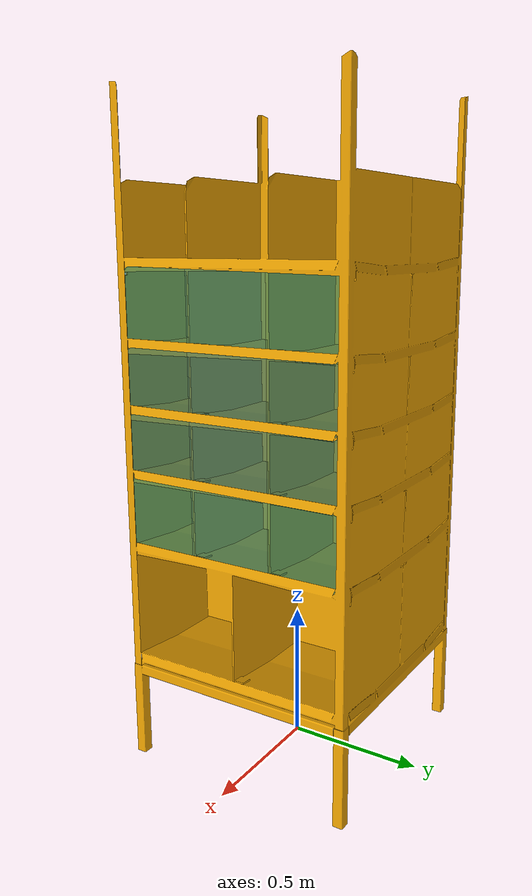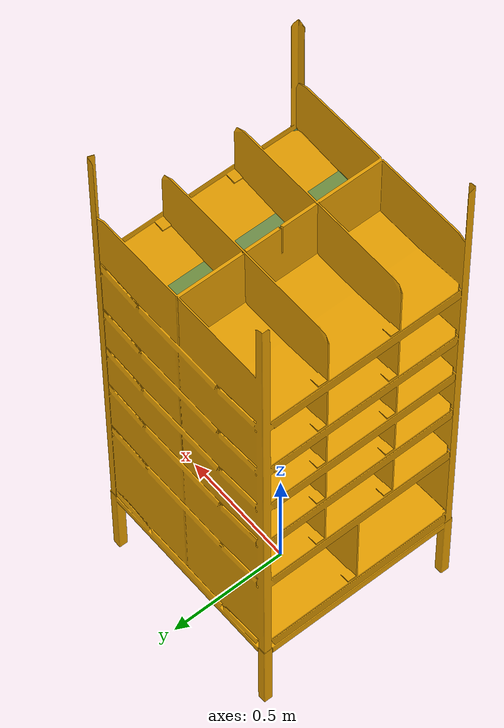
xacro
<?xml version="1.0"?>
<robot name="kiva_pod" xmlns:xacro="http://www.ros.org/wiki/xacro">

    <!-- Include decriptions for LWA4D_TORSO -->
    <xacro:include filename="$(find apc_description)/urdf/kiva_pod/kiva_pod.xacro" />

    <!-- Math constants -->
    <xacro:property name="M_PI" value="3.141592653" />

    <!-- KIVA pod properties. -->
    <xacro:property name="bin_base_height"  value="0.805" />
    <xacro:property name="bin_depth"        value="0.434" />
    <xacro:property name="bin_width_side"   value="0.274" />
    <xacro:property name="bin_width_middle" value="0.305" />
    <xacro:property name="bin_height_small" value="0.227" />
    <xacro:property name="bin_height_large" value="0.266" />

    <!-- Assemble KIVA pod. -->
    <xacro:kiva_pod name="kiva_pod" />

</robot>

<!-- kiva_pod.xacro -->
<robot name="kiva_pod" xmlns:xacro="http://www.ros.org/wiki/xacro">

    <xacro:macro name="kiva_bin" params="parent name width height *origin">

        <link name="${name}">
            <inertial>
                <origin rpy="0 0 0" xyz="0.0 0.0 0.0"/>
                <mass value="5.0"/>
                <inertia ixx="1" ixy="0.0" ixz="0.0" iyy="1" iyz="0.0" izz="1"/>
            </inertial>
            <visual>
                <origin rpy="0 0 0" xyz="${-bin_depth/2.0} 0 0"/>
                <geometry>
                    <box size="${bin_depth} ${width} ${height}"/>
                </geometry>
                <material name="${name}_material">
                    <color rgba="0 ${2.0 * height} ${2.0 * width} 0.5"/>
                </material>
            </visual>
            <collision>
                <origin rpy="0 0 0" xyz="${-bin_depth/2.0} 0 0"/>
                <geometry>
                    <box size="${bin_depth} ${width} ${height}"/>
                </geometry>
            </collision>
        </link>

        <joint name="${name}_joint" type="fixed">
            <xacro:insert_block name="origin"/>
            <parent link="${parent}"/>
            <child  link="${name}"/>
        </joint>

    </xacro:macro>

	<xacro:macro name="kiva_pod" params="name">

        <link name="${name}_origin">
            <visual>
                <origin rpy="0 0 0" xyz="0 0 0"/>
                <geometry>
                    <mesh filename="package://apc_description/meshes/kiva_pod/kiva_pod.stl" scale="1 1 1"/>
                </geometry>
            </visual>
            <collision>
                <origin rpy="0 0 0" xyz="0 0 0"/>
                <geometry>
                    <mesh filename="package://apc_description/meshes/kiva_pod/kiva_pod.stl" scale="1 1 1"/>
                </geometry>
            </collision>
        </link>

        <xacro:kiva_bin parent="${name}_origin" name="bin_A" width="${bin_width_side}" height="${bin_height_large}">
            <origin rpy="0 0 0" xyz="${ bin_depth}
                                     ${-bin_width_middle / 2.0 - bin_width_side / 2.0}
                                     ${ bin_base_height + 1.5*bin_height_large + 2*bin_height_small}"/>
        </xacro:kiva_bin>

        <xacro:kiva_bin parent="${name}_origin" name="bin_B" width="${bin_width_middle}" height="${bin_height_large}">
            <origin rpy="0 0 0" xyz="${ bin_depth}
                                     ${ 0}
                                     ${ bin_base_height + 1.5*bin_height_large + 2*bin_height_small}"/>
        </xacro:kiva_bin>

        <xacro:kiva_bin parent="${name}_origin" name="bin_C" width="${bin_width_side}" height="${bin_height_large}">
            <origin rpy="0 0 0" xyz="${ bin_depth}
                                     ${ bin_width_middle / 2.0 + bin_width_side / 2.0}
                                     ${ bin_base_height + 1.5*bin_height_large + 2*bin_height_small}"/>
        </xacro:kiva_bin>

        <xacro:kiva_bin parent="${name}_origin" name="bin_D" width="${bin_width_side}" height="${bin_height_small}">
            <origin rpy="0 0 0" xyz="${ bin_depth}
                                     ${-bin_width_middle / 2.0 - bin_width_side / 2.0}
                                     ${ bin_base_height + 1.0*bin_height_large + 1.5*bin_height_small}"/>
        </xacro:kiva_bin>

        <xacro:kiva_bin parent="${name}_origin" name="bin_E" width="${bin_width_middle}" height="${bin_height_small}">
            <origin rpy="0 0 0" xyz="${ bin_depth}
                                     ${ 0}
                                     ${ bin_base_height + 1.0*bin_height_large + 1.5*bin_height_small}"/>
        </xacro:kiva_bin>

        <xacro:kiva_bin parent="${name}_origin" name="bin_F" width="${bin_width_side}" height="${bin_height_small}">
            <origin rpy="0 0 0" xyz="${ bin_depth}
                                     ${ bin_width_middle / 2.0 + bin_width_side / 2.0}
                                     ${ bin_base_height + 1.0*bin_height_large + 1.5*bin_height_small}"/>
        </xacro:kiva_bin>

        <xacro:kiva_bin parent="${name}_origin" name="bin_G" width="${bin_width_side}" height="${bin_height_small}">
            <origin rpy="0 0 0" xyz="${ bin_depth}
                                     ${-bin_width_middle / 2.0 - bin_width_side / 2.0}
                                     ${ bin_base_height + 1.0*bin_height_large + 0.5*bin_height_small}"/>
        </xacro:kiva_bin>

        <xacro:kiva_bin parent="${name}_origin" name="bin_H" width="${bin_width_middle}" height="${bin_height_small}">
            <origin rpy="0 0 0" xyz="${ bin_depth}
                                     ${ 0}
                                     ${ bin_base_height + 1.0*bin_height_large + 0.5*bin_height_small}"/>
        </xacro:kiva_bin>

        <xacro:kiva_bin parent="${name}_origin" name="bin_I" width="${bin_width_side}" height="${bin_height_small}">
            <origin rpy="0 0 0" xyz="${ bin_depth}
                                     ${ bin_width_middle / 2.0 + bin_width_side / 2.0}
                                     ${ bin_base_height + 1.0*bin_height_large + 0.5*bin_height_small}"/>
        </xacro:kiva_bin>

        <xacro:kiva_bin parent="${name}_origin" name="bin_J" width="${bin_width_side}" height="${bin_height_large}">
            <origin rpy="0 0 0" xyz="${ bin_depth}
                                     ${-bin_width_middle / 2.0 - bin_width_side / 2.0}
                                     ${ bin_base_height + 0.5*bin_height_large}"/>
        </xacro:kiva_bin>

        <xacro:kiva_bin parent="${name}_origin" name="bin_K" width="${bin_width_middle}" height="${bin_height_large}">
            <origin rpy="0 0 0" xyz="${ bin_depth}
                                     ${ 0}
                                     ${ bin_base_height + 0.5*bin_height_large}"/>
        </xacro:kiva_bin>

        <xacro:kiva_bin parent="${name}_origin" name="bin_L" width="${bin_width_side}" height="${bin_height_large}">
            <origin rpy="0 0 0" xyz="${ bin_depth}
                                     ${ bin_width_middle / 2.0 + bin_width_side / 2.0}
                                     ${ bin_base_height + 0.5*bin_height_large}"/>
        </xacro:kiva_bin>

	</xacro:macro>

</robot>
